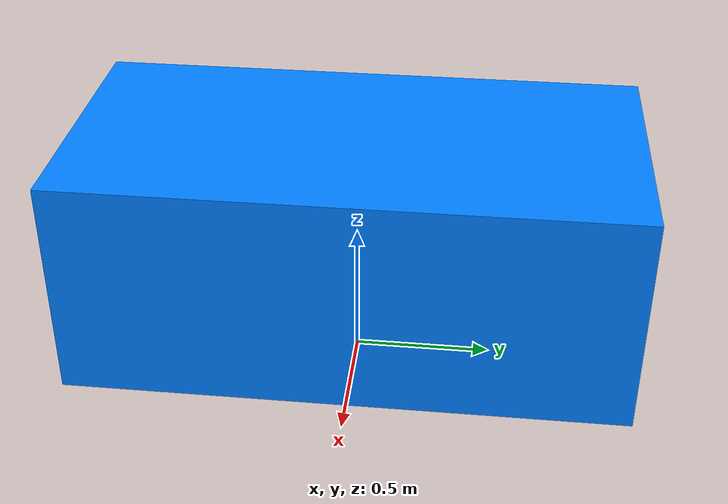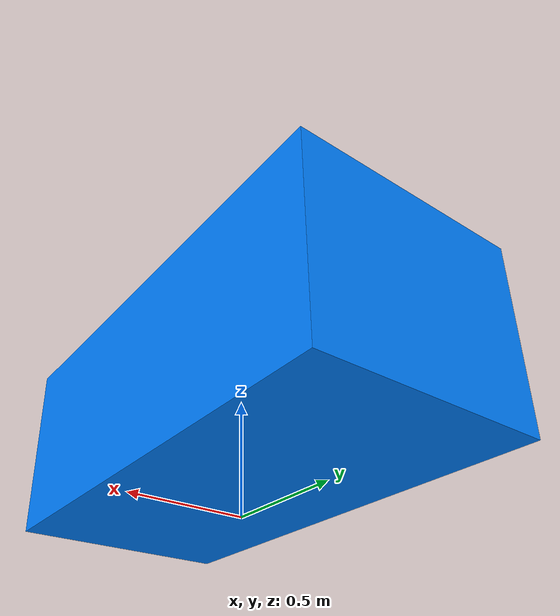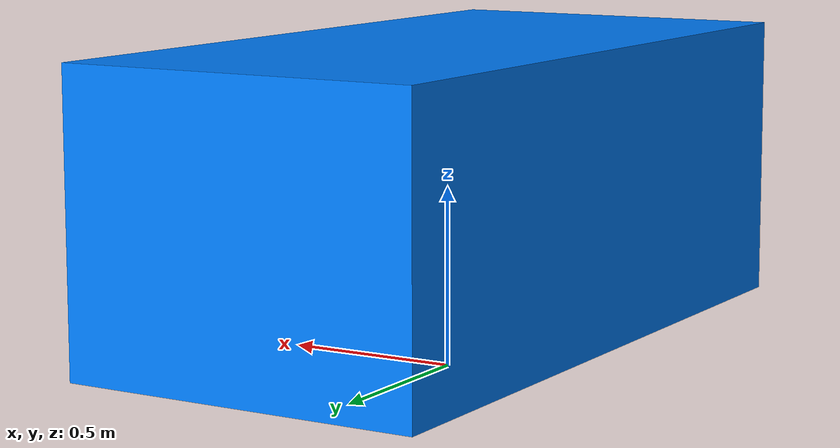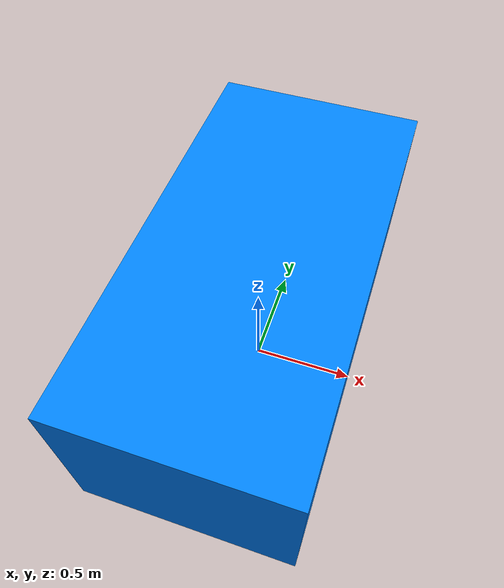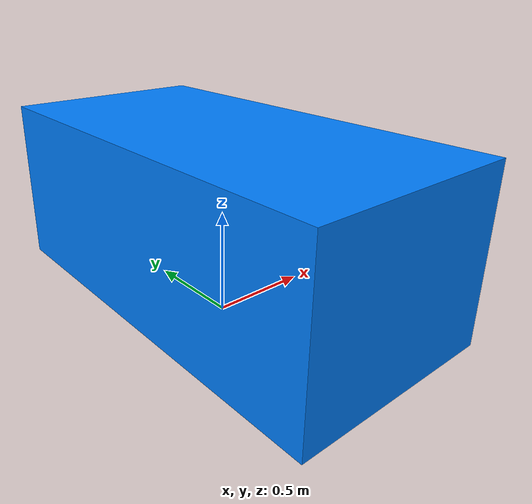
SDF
<?xml version="1.0" ?>
<sdf version="1.6">
  <model name="static_rigid_box">
    <static>true</static>
    <link name="link">
      <pose>0 0 0.5 0 0 0</pose>
      <visual name="visual">
        <geometry>
          <box>
            <size>1 2 0.8</size>
          </box>
        </geometry>

        <material>
          <ambient>0.0 0.5 1.0 1.0</ambient>
          <diffuse>0.0 0.5 1.0 1.0</diffuse>
          <specular>0.0 0.5 1.0 1.0</specular>\
          <emissive>0.0 0.5 1.0 1.0</emissive>
        </material>
      </visual>
      <collision name="collision">
        <geometry>
          <box>
            <size>1 2 0.8</size>
          </box>
        </geometry>
        <surface>
          <contact>
            <ode>
              <mu>1.0</mu>
              <mu2>1.0</mu2>
            </ode>
          </contact>
          <bounce>
            <restitution_coefficient>0</restitution_coefficient>
            <threshold>0</threshold>
          </bounce>
          <friction>
            <ode>
              <mu>1.0</mu>
              <mu2>1.0</mu2>
            </ode>
          </friction>
        </surface>
      </collision>
      <inertial>
        <mass>1.0</mass>
        <inertia>
          <ixx>0.1</ixx>
          <iyy>0.1</iyy>
          <izz>0.1</izz>
          <ixy>0.0</ixy>
          <ixz>0.0</ixz>
          <iyz>0.0</iyz>
        </inertia>
      </inertial>
    </link>
  </model>
</sdf>
